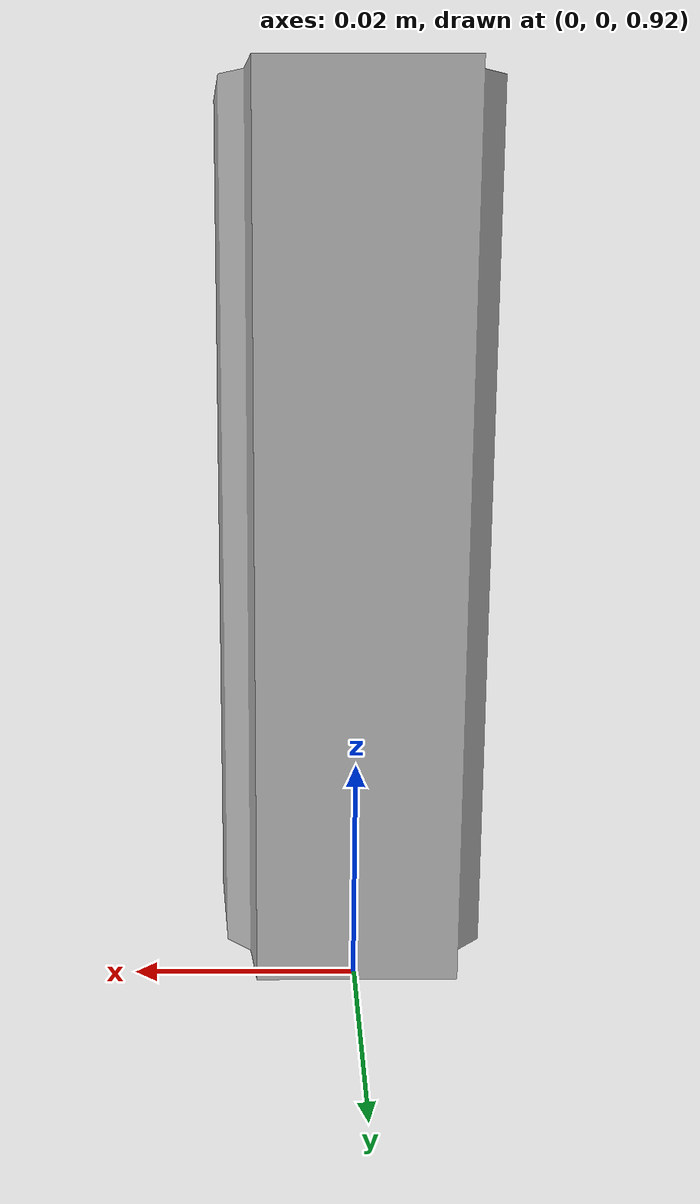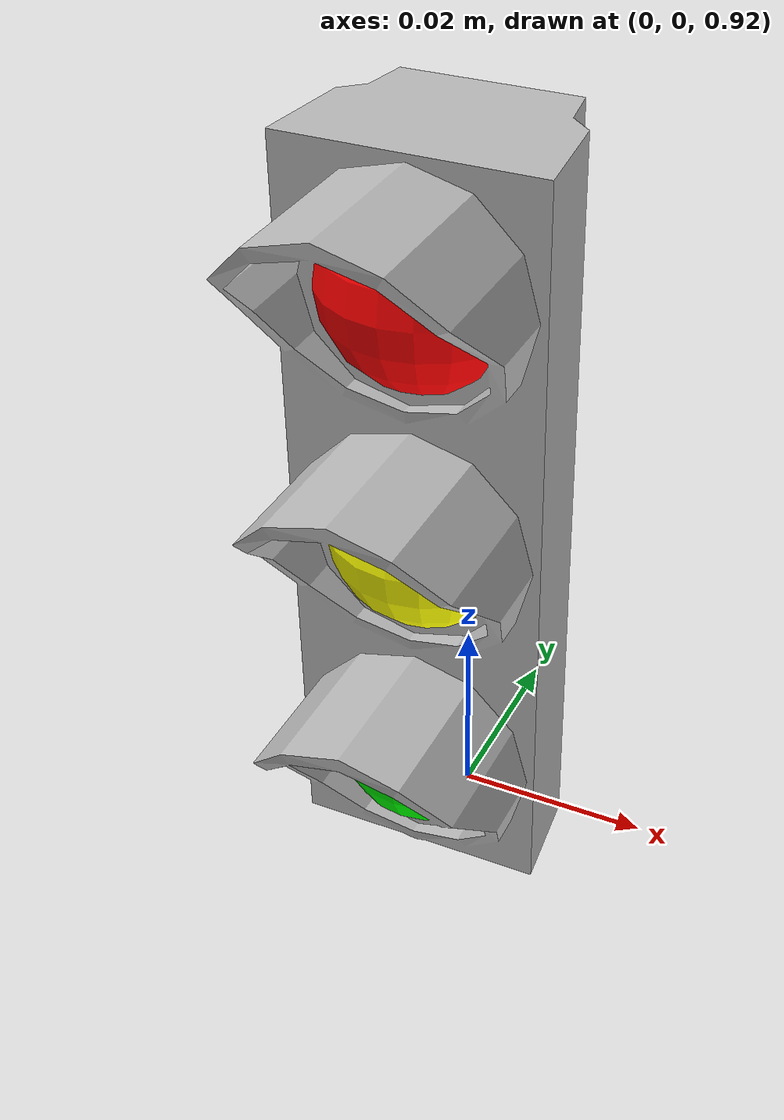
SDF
<?xml version="1.0" ?>
<sdf version="1.6">
  <model name="stop_light">

    <static>true</static>

    <!-- this pose can be overriden when including the light on another model -->
    <pose>0 0 1.0 0 0 0</pose>

    <link name="link">

      <collision name="collision">
        <geometry>
          <mesh>
            <uri>model://stop_light/meshes/stop_light.obj</uri>
            <scale>0.001 0.001 0.001</scale>
          </mesh>
        </geometry>
      </collision>

      <visual name="frame">
        <geometry>
          <mesh>
            <uri>model://stop_light/meshes/stop_light.obj</uri>
            <scale>0.001 0.001 0.001</scale>
          </mesh>
        </geometry>
      </visual>

      <visual name="red">
        <pose>-0.0001123 -0.0082251 -0.0147514 0 0 0</pose>
        <geometry>
          <sphere>
            <radius>0.01012</radius>
          </sphere>
        </geometry>
        <material>
          <script>
            <uri>model://stop_light/materials/scripts/</uri>
            <uri>model://stop_light/materials/textures/</uri>
            <name>StopLight/Light</name>
          </script>
          <ambient>1 0 0 1</ambient>
          <specular>1 0 0 1</specular>
          <!-- Turn a light on by uncommenting emissive -->
        </material>
      </visual>

      <visual name="yellow">
        <pose>-0.0001123 -0.0082251 -0.0402 0 0 0</pose>
        <geometry>
          <sphere>
            <radius>0.01012</radius>
          </sphere>
        </geometry>
        <material>
          <script>
            <uri>model://stop_light/materials/scripts/</uri>
            <uri>model://stop_light/materials/textures/</uri>
            <name>StopLight/Light</name>
          </script>
          <ambient>1 1 0 1</ambient>
          <specular>1 1 0 1</specular>
        </material>
      </visual>

      <visual name="green">
        <pose>-0.0001123 -0.0082251 -0.0655 0 0 0</pose>
        <geometry>
          <sphere>
            <radius>0.01012</radius>
          </sphere>
        </geometry>
        <material>
          <script>
            <uri>model://stop_light/materials/scripts/</uri>
            <uri>model://stop_light/materials/textures/</uri>
            <name>StopLight/Light</name>
          </script>
          <ambient>0 1 0 1</ambient>
          <specular>0 1 0 1</specular>
        </material>
      </visual>

    </link>
  </model>
</sdf>
